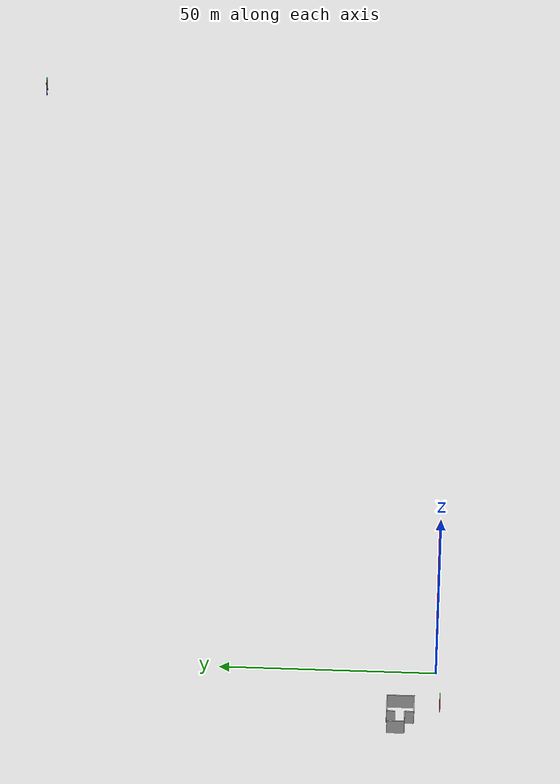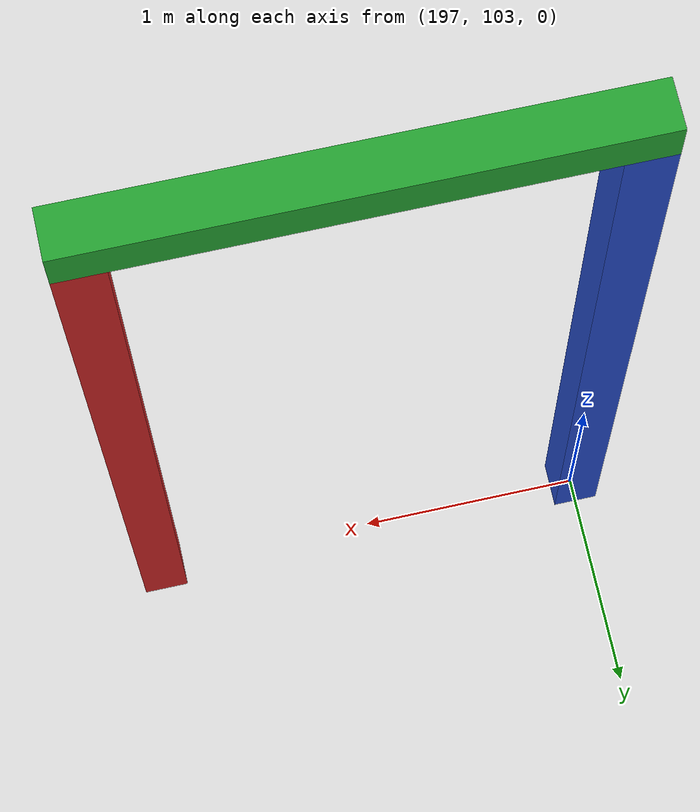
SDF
<sdf version="1.4">
 <world name="vrc_task_1">
  <scene><ambient>0.2 0.2 0.2 1.0</ambient><grid>false</grid></scene>
  <physics type="ode">
   <gravity>0 0 -9.81</gravity>
   <ode>
    <solver><type>quick</type><iters>50</iters><sor>1.4</sor></solver>
    <constraints>
     <cfm>0.0</cfm>
     <erp>0.2</erp>
     <contact_max_correcting_vel>100.0</contact_max_correcting_vel>
     <contact_surface_layer>0.0</contact_surface_layer>
    </constraints>
   </ode>
   <real_time_update_rate>1000</real_time_update_rate>
   <max_step_size>0.001</max_step_size>
  </physics>
  <light type="directional" name="sun">
   <cast_shadows>false</cast_shadows>
   <pose>0 0 100 0 0 0</pose>
   <diffuse>0.8 0.8 0.8 1</diffuse>
   <specular>0.9 0.9 0.9 1</specular>
   <attenuation>
    <range>1000</range>
    <constant>0.9</constant>
    <linear>0.01</linear>
    <quadratic>0.001</quadratic>
   </attenuation>
   <direction>0.2 0.2 -0.9</direction>
  </light>
  <light type="point" name="light_bulb">
   <cast_shadows>false</cast_shadows>
   <pose>-14 0 5 0 0 0</pose>
   <diffuse>0.3 0.3 0.3 1</diffuse>
   <specular>0.0 0.0 0.0 1</specular>
   <attenuation>
    <range>80</range>
    <constant>0.9</constant>
    <linear>0.01</linear>
    <quadratic>0.001</quadratic>
   </attenuation>
  </light>
  <include>
   <uri>model://gate</uri>
   <name>gate_3</name>
   <static>true</static>
   <pose>198 103 2.0 0 0 1.5707</pose>
  </include>
  <include><uri>model://starting_pen</uri><static>true</static><pose>-11 8.0 0.0 0 0 3.1415</pose></include>
  <include>
   <uri>model://gate</uri>
   <name>gate_0</name>
   <static>true</static>
   <pose>-11 -1 2.0 0 0 -1.5707</pose>
  </include>
  <model name="road_boxes">
   <static>true</static>
   <link name="link">
    <collision name="collision_1">
     <pose>51 0 0 0 0 0</pose>
     <geometry><box><size>102 7.34 0.02</size></box></geometry>
     <surface><friction><ode><mu>100</mu><mu2>50</mu2></ode></friction></surface>
    </collision>
    <collision name="collision_2">
     <pose>125 25 0 0 0 0.78539</pose>
     <geometry><box><size>72 7.34 0.02</size></box></geometry>
     <surface><friction><ode><mu>100</mu><mu2>50</mu2></ode></friction></surface>
    </collision>
    <collision name="collision_3">
     <pose>150 75 0 0 0 0</pose>
     <geometry><box><size>7.34 53 0.02</size></box></geometry>
     <surface><friction><ode><mu>100</mu><mu2>50</mu2></ode></friction></surface>
    </collision>
    <collision name="collision_4">
     <pose>173.5 100 0 0 0 0</pose>
     <geometry><box><size>54.5 7.34 0.02</size></box></geometry>
     <surface><friction><ode><mu>100</mu><mu2>50</mu2></ode></friction></surface>
    </collision>
    <collision name="collision_5">
     <pose>198 106 0 0 0 0</pose>
     <geometry><box><size>6 5 0.02</size></box></geometry>
     <surface><friction><ode><mu>100</mu><mu2>50</mu2></ode></friction></surface>
    </collision>
   </link>
  </model>
  <plugin filename="libVRCPlugin.so" name="vrc_plugin">
   <atlas><model_name>atlas</model_name><pin_link>utorso</pin_link></atlas>
   <drc_vehicle>
    <model_name>drc_vehicle</model_name>
    <seat_link>polaris_ranger_ev::chassis</seat_link>
   </drc_vehicle>
   <drc_fire_hose>
    <fire_hose_model>fire_hose</fire_hose_model>
    <coupling_link>coupling</coupling_link>
    <standpipe_model>standpipe</standpipe_model>
    <spout_link>standpipe</spout_link>
    <thread_pitch>-1000</thread_pitch>
    <coupling_relative_pose>1.17038e-05 -0.125623 0.35 -0.0412152 -1.57078 1.61199</coupling_relative_pose>
   </drc_fire_hose>
  </plugin>
  <plugin filename="libVRCScoringPlugin.so" name="vrc_scoring">
   <score_file>/tmp/vrc_final_task1/score.log</score_file>
  </plugin>
 </world>
</sdf>

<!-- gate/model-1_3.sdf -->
<sdf version="1.3">

  <model name="gate">
    <static>true</static>
    <pose>0 0 2.0 0 0 0</pose>
    <link name="link">
      <collision name="right_collision">
        <pose>0 -1.0 0 0 0 0</pose>
        <geometry>
          <box>
            <size>0.2 0.2 4.0</size>
          </box>
        </geometry>
      </collision>
      <visual name="right_visual">
        <pose>0 -1.0 0 0 0 0</pose>
        <geometry>
          <box>
            <size>0.2 0.2 4.0</size>
          </box>
        </geometry>
        <material>
          <script>
            <uri>model://gate/materials/scripts/gate.material</uri>
            <uri>model://gate/materials/textures</uri>
            <name>vrc/red_gate</name>
          </script>
        </material>
      </visual>

      <collision name="left_collision">
        <pose>0 1.0 0 0 0 0</pose>
        <geometry>
          <box>
            <size>0.2 0.2 4.0</size>
          </box>
        </geometry>
      </collision>
      <visual name="left_visual">
        <pose>0 1.0 0 0 0 0</pose>
        <geometry>
          <box>
            <size>0.2 0.2 4.0</size>
          </box>
        </geometry>
        <material>
          <script>
            <uri>model://gate/materials/scripts/gate.material</uri>
            <uri>model://gate/materials/textures</uri>
            <name>vrc/blue_gate</name>
          </script>
        </material>
      </visual>

      <collision name="top_collision">
        <pose>0 0 2.1 0 0 0</pose>
        <geometry>
          <box>
            <size>0.2 2.2 0.2</size>
          </box>
        </geometry>
      </collision>
      <visual name="top_visual">
        <pose>0 0 2.1 0 0 0</pose>
        <geometry>
          <box>
            <size>0.2 2.2 0.2</size>
          </box>
        </geometry>
        <material>
          <script>
            <uri>model://gate/materials/scripts/gate.material</uri>
            <uri>model://gate/materials/textures</uri>
            <name>vrc/green_gate</name>
          </script>
        </material>
      </visual>
    </link>
  </model>
</sdf>

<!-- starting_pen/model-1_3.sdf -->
<sdf version="1.3">
  <model name="starting_pen">
    <static>true</static>
    <pose>-2.0 0 2.0 0 0 0</pose>

    <link name="link">
      <collision name="back_collision">
        <pose>-2 0 0 0 0 0</pose>
        <geometry>
          <box>
            <size>0.2 6 4.0</size>
          </box>
        </geometry>
      </collision>
      <visual name="back_visual">
        <pose>-2 0 0 0 0 0</pose>
        <geometry>
          <box>
            <size>0.2 6 4.0</size>
          </box>
        </geometry>
        <material>
          <script>
            <uri>file://media/materials/scripts/drc_qual.material</uri>
            <name>DRCQual/WarningWall</name>
          </script>
        </material>
      </visual>

      <collision name="left_collision">
        <pose>0.4 -3.1 0 0 0 0</pose>
        <geometry>
          <box>
            <size>5 0.2 4.0</size>
          </box>
        </geometry>
      </collision>
      <visual name="left_visual_lower">
        <pose>0.4 -3.1 0.0 0 0 0</pose>
        <geometry>
          <box>
            <size>5 0.2 4.0</size>
          </box>
        </geometry>
        <material>
          <script>
            <uri>file://media/materials/scripts/drc_qual.material</uri>
            <name>DRCQual/WarningWall</name>
          </script>
        </material>
      </visual>

      <collision name="right_collision">
        <pose>0.4 3.1 0 0 0 0</pose>
        <geometry>
          <box>
            <size>5 0.2 4.0</size>
          </box>
        </geometry>
      </collision>
      <visual name="right_visual">
        <pose>0.4 3.1 0 0 0 0</pose>
        <geometry>
          <box>
            <size>5 0.2 4.0</size>
          </box>
        </geometry>
        <material>
          <script>
            <uri>file://media/materials/scripts/drc_qual.material</uri>
            <name>DRCQual/WarningWall</name>
          </script>
        </material>
      </visual>

      <collision name="front_right_collision">
        <pose>2.9 2.1 0 0 0 0</pose>
        <geometry>
          <box>
            <size>0.2 2.0 4.0</size>
          </box>
        </geometry>
      </collision>
      <visual name="front_right_visual">
        <pose>2.9 2.1 0 0 0 0</pose>
        <geometry>
          <box>
            <size>0.2 2.0 4.0</size>
          </box>
        </geometry>
        <material>
          <script>
            <uri>file://media/materials/scripts/drc_qual.material</uri>
            <name>DRCQual/WarningWall</name>
          </script>
        </material>
      </visual>

      <collision name="front_left_collision">
        <pose>2.9 -2.1 0 0 0 0</pose>
        <geometry>
          <box>
            <size>0.2 2.0 4.0</size>
          </box>
        </geometry>
      </collision>
      <visual name="front_left_visual">
        <pose>2.9 -2.1 0 0 0 0</pose>
        <geometry>
          <box>
            <size>0.2 2.0 4.0</size>
          </box>
        </geometry>
        <material>
          <script>
            <uri>file://media/materials/scripts/drc_qual.material</uri>
            <name>DRCQual/WarningWall</name>
          </script>
        </material>
      </visual>

      <collision name="front_collision">
        <pose>6.0 -1 0 0 0 0</pose>
        <geometry>
          <box>
            <size>0.2 4 4.0</size>
          </box>
        </geometry>
      </collision>
      <visual name="front_visual">
        <pose>6.0 -1 0 0 0 3.1415</pose>
        <geometry>
          <mesh>
            <uri>model://arrow_wall/meshes/arrow_wall.dae</uri>
          </mesh>
        </geometry>
      </visual>

      <collision name="entryway_collision">
        <pose>4.5 1.0 0 0 0 0</pose>
        <geometry>
          <box>
            <size>3.0 .2 4.0</size>
          </box>
        </geometry>
      </collision>
      <visual name="entryway_visual">
        <pose>4.5 1.0 0 0 0 0</pose>
        <geometry>
          <box>
            <size>3.0 .2 4.0</size>
          </box>
        </geometry>
        <material>
          <script>
            <uri>file://media/materials/scripts/drc_qual.material</uri>
            <name>DRCQual/WarningWall</name>
          </script>
        </material>
      </visual>

    </link>
  </model>
</sdf>
